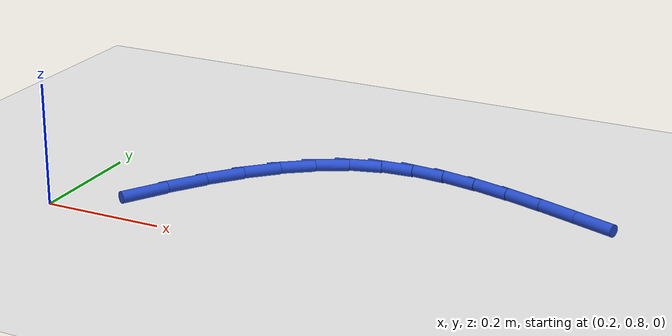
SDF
<sdf version="1.6">
 <world name="default">
  <model name="ground_plane">
   <static>1</static>
   <link name="link">
    <collision name="collision">
     <geometry><plane><normal>0 0 1</normal><size>100 100</size></plane></geometry>
     <surface><friction><ode><mu>100</mu><mu2>50</mu2></ode></friction></surface>
    </collision>
    <visual name="visual">
     <cast_shadows>0</cast_shadows>
     <geometry><plane><normal>0 0 1</normal><size>100 100</size></plane></geometry>
     <material>
      <script><uri>file://media/materials/scripts/gazebo.material</uri><name>Gazebo/WhiteGlow</name></script>
     </material>
    </visual>
   </link>
  </model>
  <model name="line">
   <link name="link_14">
    <pose>0.3216754524872923 0.886299161463949 0.01 0 1.57 1.0203977382379152</pose>
    <collision name="collision">
     <geometry><cylinder><radius>0.01</radius><length>0.08</length></cylinder></geometry>
    </collision>
    <visual name="visual">
     <material>
      <script><name>Gazebo/Blue</name><uri>file://media/materials/scripts/gazebo.material</uri></script>
     </material>
     <geometry><cylinder><radius>0.01</radius><length>0.08</length></cylinder></geometry>
    </visual>
   </link>
   <link name="link_15">
    <pose>0.35790642205325474 0.9453405487377081 0.01 0 1.57 0.954213345842727</pose>
    <collision name="collision">
     <geometry><cylinder><radius>0.01</radius><length>0.08</length></cylinder></geometry>
    </collision>
    <visual name="visual">
     <material>
      <script><name>Gazebo/Blue</name><uri>file://media/materials/scripts/gazebo.material</uri></script>
     </material>
     <geometry><cylinder><radius>0.01</radius><length>0.08</length></cylinder></geometry>
    </visual>
   </link>
   <link name="link_16">
    <pose>0.39635207391955274 0.9995838611347644 0.01 0 1.57 0.8688890255433975</pose>
    <collision name="collision">
     <geometry><cylinder><radius>0.01</radius><length>0.08</length></cylinder></geometry>
    </collision>
    <visual name="visual">
     <material>
      <script><name>Gazebo/Blue</name><uri>file://media/materials/scripts/gazebo.material</uri></script>
     </material>
     <geometry><cylinder><radius>0.01</radius><length>0.08</length></cylinder></geometry>
    </visual>
   </link>
   <link name="link_17">
    <pose>0.4372382679169787 1.0479381836150061 0.01 0 1.57 0.7597561334737732</pose>
    <collision name="collision">
     <geometry><cylinder><radius>0.01</radius><length>0.08</length></cylinder></geometry>
    </collision>
    <visual name="visual">
     <material>
      <script><name>Gazebo/Blue</name><uri>file://media/materials/scripts/gazebo.material</uri></script>
     </material>
     <geometry><cylinder><radius>0.01</radius><length>0.08</length></cylinder></geometry>
    </visual>
   </link>
   <link name="link_18">
    <pose>0.48079086387632525 1.0893126011383212 0.01 0 1.57 0.6220819397899864</pose>
    <collision name="collision">
     <geometry><cylinder><radius>0.01</radius><length>0.08</length></cylinder></geometry>
    </collision>
    <visual name="visual">
     <material>
      <script><name>Gazebo/Blue</name><uri>file://media/materials/scripts/gazebo.material</uri></script>
     </material>
     <geometry><cylinder><radius>0.01</radius><length>0.08</length></cylinder></geometry>
    </visual>
   </link>
   <link name="link_19">
    <pose>0.527235721628385 1.1226161986645982 0.01 0 1.57 0.45327013609414757</pose>
    <collision name="collision">
     <geometry><cylinder><radius>0.01</radius><length>0.08</length></cylinder></geometry>
    </collision>
    <visual name="visual">
     <material>
      <script><name>Gazebo/Blue</name><uri>file://media/materials/scripts/gazebo.material</uri></script>
     </material>
     <geometry><cylinder><radius>0.01</radius><length>0.08</length></cylinder></geometry>
    </visual>
   </link>
   <link name="link_20">
    <pose>0.5767987010039503 1.1467580611537254 0.01 0 1.57 0.2575403891570327</pose>
    <collision name="collision">
     <geometry><cylinder><radius>0.01</radius><length>0.08</length></cylinder></geometry>
    </collision>
    <visual name="visual">
     <material>
      <script><name>Gazebo/Blue</name><uri>file://media/materials/scripts/gazebo.material</uri></script>
     </material>
     <geometry><cylinder><radius>0.01</radius><length>0.08</length></cylinder></geometry>
    </visual>
   </link>
   <link name="link_21">
    <pose>0.629695174899726 1.1606904415814334 0.01 0 1.57 0.0691793858090316</pose>
    <collision name="collision">
     <geometry><cylinder><radius>0.01</radius><length>0.08</length></cylinder></geometry>
    </collision>
    <visual name="visual">
     <material>
      <script><name>Gazebo/Blue</name><uri>file://media/materials/scripts/gazebo.material</uri></script>
     </material>
     <geometry><cylinder><radius>0.01</radius><length>0.08</length></cylinder></geometry>
    </visual>
   </link>
   <link name="link_22">
    <pose>0.6858452351041232 1.1645810768250457 0.01 0 1.57 -0.07831433024278804</pose>
    <collision name="collision">
     <geometry><cylinder><radius>0.01</radius><length>0.08</length></cylinder></geometry>
    </collision>
    <visual name="visual">
     <material>
      <script><name>Gazebo/Blue</name><uri>file://media/materials/scripts/gazebo.material</uri></script>
     </material>
     <geometry><cylinder><radius>0.01</radius><length>0.08</length></cylinder></geometry>
    </visual>
   </link>
   <link name="link_23">
    <pose>0.7448401001912222 1.1599514649286429 0.01 0 1.57 -0.18601443902153103</pose>
    <collision name="collision">
     <geometry><cylinder><radius>0.01</radius><length>0.08</length></cylinder></geometry>
    </collision>
    <visual name="visual">
     <material>
      <script><name>Gazebo/Blue</name><uri>file://media/materials/scripts/gazebo.material</uri></script>
     </material>
     <geometry><cylinder><radius>0.01</radius><length>0.08</length></cylinder></geometry>
    </visual>
   </link>
   <link name="link_24">
    <pose>0.8062537589210459 1.1483940280862923 0.01 0 1.57 -0.26037349418854855</pose>
    <collision name="collision">
     <geometry><cylinder><radius>0.01</radius><length>0.08</length></cylinder></geometry>
    </collision>
    <visual name="visual">
     <material>
      <script><name>Gazebo/Blue</name><uri>file://media/materials/scripts/gazebo.material</uri></script>
     </material>
     <geometry><cylinder><radius>0.01</radius><length>0.08</length></cylinder></geometry>
    </visual>
   </link>
   <link name="link_25">
    <pose>0.8696602000536178 1.1315011884920634 0.01 0 1.57 -0.3075289466880067</pose>
    <collision name="collision">
     <geometry><cylinder><radius>0.01</radius><length>0.08</length></cylinder></geometry>
    </collision>
    <visual name="visual">
     <material>
      <script><name>Gazebo/Blue</name><uri>file://media/materials/scripts/gazebo.material</uri></script>
     </material>
     <geometry><cylinder><radius>0.01</radius><length>0.08</length></cylinder></geometry>
    </visual>
   </link>
   <link name="link_26">
    <pose>0.9346334123489612 1.1108653683400236 0.01 0 1.57 -0.33190342145785034</pose>
    <collision name="collision">
     <geometry><cylinder><radius>0.01</radius><length>0.08</length></cylinder></geometry>
    </collision>
    <visual name="visual">
     <material>
      <script><name>Gazebo/Blue</name><uri>file://media/materials/scripts/gazebo.material</uri></script>
     </material>
     <geometry><cylinder><radius>0.01</radius><length>0.08</length></cylinder></geometry>
    </visual>
   </link>
   <link name="link_27">
    <pose>1.0007473845670996 1.0880789898242416 0.01 0 1.57 -0.3360676454044283</pose>
    <collision name="collision">
     <geometry><cylinder><radius>0.01</radius><length>0.08</length></cylinder></geometry>
    </collision>
    <visual name="visual">
     <material>
      <script><name>Gazebo/Blue</name><uri>file://media/materials/scripts/gazebo.material</uri></script>
     </material>
     <geometry><cylinder><radius>0.01</radius><length>0.08</length></cylinder></geometry>
    </visual>
   </link>
  </model>
 </world>
</sdf>
